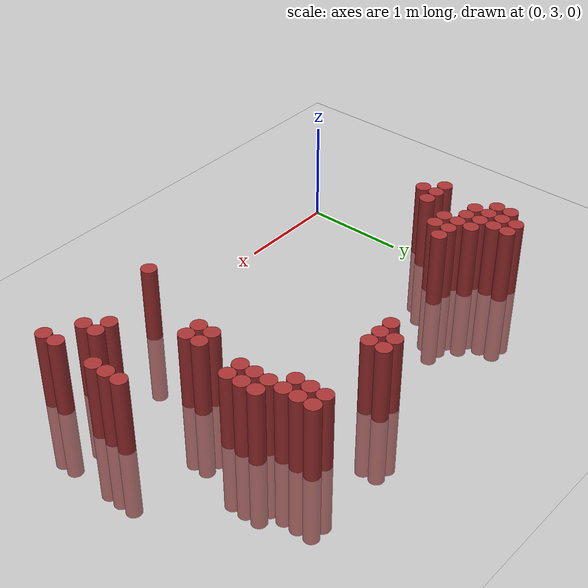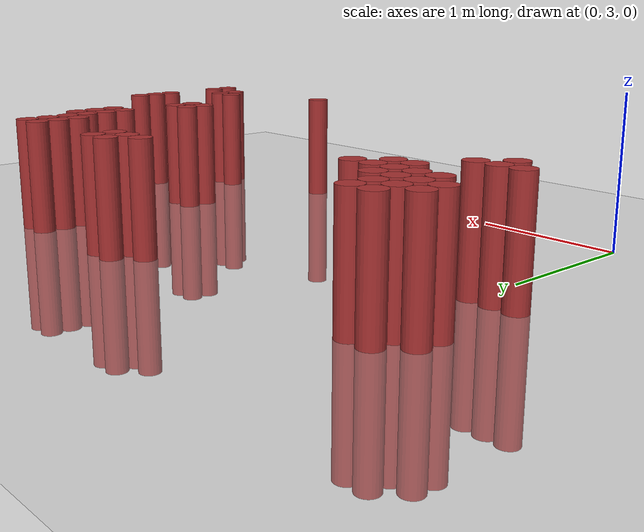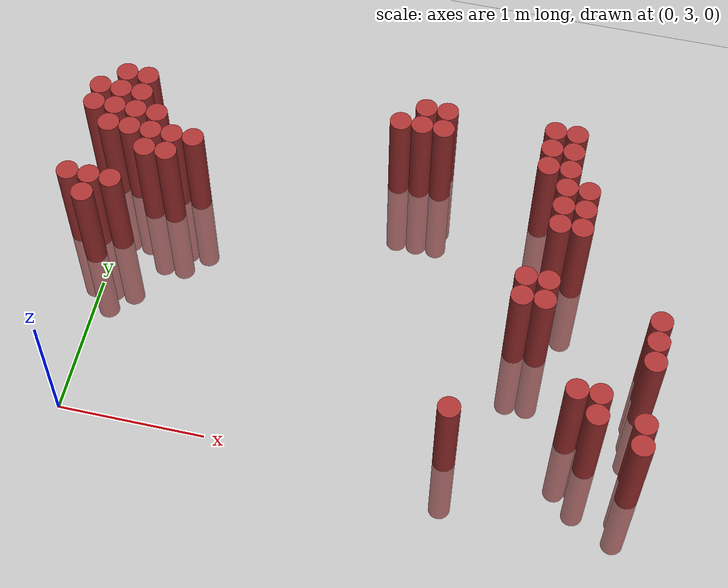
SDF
<sdf version="1.6">
 <world name="default">
  <model name="ground_plane">
   <static>1</static>
   <link name="link">
    <collision name="collision">
     <geometry><plane><normal>0 0 1</normal><size>100 100</size></plane></geometry>
     <surface><friction><ode><mu>100</mu><mu2>50</mu2></ode></friction></surface>
    </collision>
    <visual name="visual">
     <cast_shadows>0</cast_shadows>
     <geometry><plane><normal>0 0 1</normal><size>100 100</size></plane></geometry>
     <material>
      <script><uri>file://media/materials/scripts/gazebo.material</uri><name>Gazebo/Grey</name></script>
     </material>
    </visual>
   </link>
  </model>
  <model name="unit_cylinder_397">
   <static>1</static>
   <pose>-0.275000 4.375000 0.000000 0.000000 0.000000 0.000000</pose>
   <link name="link">
    <inertial>
     <mass>1</mass>
     <inertia><ixx>0.145833</ixx><ixy>0</ixy><ixz>0</ixz><iyy>0.145833</iyy><iyz>0</iyz><izz>0.125</izz></inertia>
    </inertial>
    <collision name="collision">
     <geometry><cylinder><radius>0.075000</radius><length>1.5</length></cylinder></geometry>
    </collision>
    <visual name="visual">
     <geometry><cylinder><radius>0.075000</radius><length>1.5</length></cylinder></geometry>
     <material>
      <ambient>0.648000 0.192000 0.192000 1</ambient>
      <diffuse>0.648000 0.192000 0.192000 1</diffuse>
     </material>
     <material>
      <script><name>Gazebo/Grey</name><uri>file://media/materials/scripts/gazebo.material</uri></script>
     </material>
    </visual>
   </link>
  </model>
  <model name="unit_cylinder_398">
   <static>1</static>
   <pose>-0.275000 4.975000 0.000000 0.000000 0.000000 0.000000</pose>
   <link name="link">
    <inertial>
     <mass>1</mass>
     <inertia><ixx>0.145833</ixx><ixy>0</ixy><ixz>0</ixz><iyy>0.145833</iyy><iyz>0</iyz><izz>0.125</izz></inertia>
    </inertial>
    <collision name="collision">
     <geometry><cylinder><radius>0.075000</radius><length>1.5</length></cylinder></geometry>
    </collision>
    <visual name="visual">
     <geometry><cylinder><radius>0.075000</radius><length>1.5</length></cylinder></geometry>
     <material>
      <ambient>0.648000 0.192000 0.192000 1</ambient>
      <diffuse>0.648000 0.192000 0.192000 1</diffuse>
     </material>
     <material>
      <script><name>Gazebo/Grey</name><uri>file://media/materials/scripts/gazebo.material</uri></script>
     </material>
    </visual>
   </link>
  </model>
  <model name="unit_cylinder_399">
   <static>1</static>
   <pose>-0.275000 5.125000 0.000000 0.000000 0.000000 0.000000</pose>
   <link name="link">
    <inertial>
     <mass>1</mass>
     <inertia><ixx>0.145833</ixx><ixy>0</ixy><ixz>0</ixz><iyy>0.145833</iyy><iyz>0</iyz><izz>0.125</izz></inertia>
    </inertial>
    <collision name="collision">
     <geometry><cylinder><radius>0.075000</radius><length>1.5</length></cylinder></geometry>
    </collision>
    <visual name="visual">
     <geometry><cylinder><radius>0.075000</radius><length>1.5</length></cylinder></geometry>
     <material>
      <ambient>0.648000 0.192000 0.192000 1</ambient>
      <diffuse>0.648000 0.192000 0.192000 1</diffuse>
     </material>
     <material>
      <script><name>Gazebo/Grey</name><uri>file://media/materials/scripts/gazebo.material</uri></script>
     </material>
    </visual>
   </link>
  </model>
  <model name="unit_cylinder_401">
   <static>1</static>
   <pose>-0.125000 4.225000 0.000000 0.000000 0.000000 0.000000</pose>
   <link name="link">
    <inertial>
     <mass>1</mass>
     <inertia><ixx>0.145833</ixx><ixy>0</ixy><ixz>0</ixz><iyy>0.145833</iyy><iyz>0</iyz><izz>0.125</izz></inertia>
    </inertial>
    <collision name="collision">
     <geometry><cylinder><radius>0.075000</radius><length>1.5</length></cylinder></geometry>
    </collision>
    <visual name="visual">
     <geometry><cylinder><radius>0.075000</radius><length>1.5</length></cylinder></geometry>
     <material>
      <ambient>0.648000 0.192000 0.192000 1</ambient>
      <diffuse>0.648000 0.192000 0.192000 1</diffuse>
     </material>
     <material>
      <script><name>Gazebo/Grey</name><uri>file://media/materials/scripts/gazebo.material</uri></script>
     </material>
    </visual>
   </link>
  </model>
  <model name="unit_cylinder_402">
   <static>1</static>
   <pose>-0.125000 4.375000 0.000000 0.000000 0.000000 0.000000</pose>
   <link name="link">
    <inertial>
     <mass>1</mass>
     <inertia><ixx>0.145833</ixx><ixy>0</ixy><ixz>0</ixz><iyy>0.145833</iyy><iyz>0</iyz><izz>0.125</izz></inertia>
    </inertial>
    <collision name="collision">
     <geometry><cylinder><radius>0.075000</radius><length>1.5</length></cylinder></geometry>
    </collision>
    <visual name="visual">
     <geometry><cylinder><radius>0.075000</radius><length>1.5</length></cylinder></geometry>
     <material>
      <ambient>0.648000 0.192000 0.192000 1</ambient>
      <diffuse>0.648000 0.192000 0.192000 1</diffuse>
     </material>
     <material>
      <script><name>Gazebo/Grey</name><uri>file://media/materials/scripts/gazebo.material</uri></script>
     </material>
    </visual>
   </link>
  </model>
  <model name="unit_cylinder_403">
   <static>1</static>
   <pose>-0.125000 4.825000 0.000000 0.000000 0.000000 0.000000</pose>
   <link name="link">
    <inertial>
     <mass>1</mass>
     <inertia><ixx>0.145833</ixx><ixy>0</ixy><ixz>0</ixz><iyy>0.145833</iyy><iyz>0</iyz><izz>0.125</izz></inertia>
    </inertial>
    <collision name="collision">
     <geometry><cylinder><radius>0.075000</radius><length>1.5</length></cylinder></geometry>
    </collision>
    <visual name="visual">
     <geometry><cylinder><radius>0.075000</radius><length>1.5</length></cylinder></geometry>
     <material>
      <ambient>0.648000 0.192000 0.192000 1</ambient>
      <diffuse>0.648000 0.192000 0.192000 1</diffuse>
     </material>
     <material>
      <script><name>Gazebo/Grey</name><uri>file://media/materials/scripts/gazebo.material</uri></script>
     </material>
    </visual>
   </link>
  </model>
  <model name="unit_cylinder_404">
   <static>1</static>
   <pose>-0.125000 4.975000 0.000000 0.000000 0.000000 0.000000</pose>
   <link name="link">
    <inertial>
     <mass>1</mass>
     <inertia><ixx>0.145833</ixx><ixy>0</ixy><ixz>0</ixz><iyy>0.145833</iyy><iyz>0</iyz><izz>0.125</izz></inertia>
    </inertial>
    <collision name="collision">
     <geometry><cylinder><radius>0.075000</radius><length>1.5</length></cylinder></geometry>
    </collision>
    <visual name="visual">
     <geometry><cylinder><radius>0.075000</radius><length>1.5</length></cylinder></geometry>
     <material>
      <ambient>0.648000 0.192000 0.192000 1</ambient>
      <diffuse>0.648000 0.192000 0.192000 1</diffuse>
     </material>
     <material>
      <script><name>Gazebo/Grey</name><uri>file://media/materials/scripts/gazebo.material</uri></script>
     </material>
    </visual>
   </link>
  </model>
  <model name="unit_cylinder_405">
   <static>1</static>
   <pose>-0.125000 5.125000 0.000000 0.000000 0.000000 0.000000</pose>
   <link name="link">
    <inertial>
     <mass>1</mass>
     <inertia><ixx>0.145833</ixx><ixy>0</ixy><ixz>0</ixz><iyy>0.145833</iyy><iyz>0</iyz><izz>0.125</izz></inertia>
    </inertial>
    <collision name="collision">
     <geometry><cylinder><radius>0.075000</radius><length>1.5</length></cylinder></geometry>
    </collision>
    <visual name="visual">
     <geometry><cylinder><radius>0.075000</radius><length>1.5</length></cylinder></geometry>
     <material>
      <ambient>0.648000 0.192000 0.192000 1</ambient>
      <diffuse>0.648000 0.192000 0.192000 1</diffuse>
     </material>
     <material>
      <script><name>Gazebo/Grey</name><uri>file://media/materials/scripts/gazebo.material</uri></script>
     </material>
    </visual>
   </link>
  </model>
  <model name="unit_cylinder_406">
   <static>1</static>
   <pose>-0.125000 5.275000 0.000000 0.000000 0.000000 0.000000</pose>
   <link name="link">
    <inertial>
     <mass>1</mass>
     <inertia><ixx>0.145833</ixx><ixy>0</ixy><ixz>0</ixz><iyy>0.145833</iyy><iyz>0</iyz><izz>0.125</izz></inertia>
    </inertial>
    <collision name="collision">
     <geometry><cylinder><radius>0.075000</radius><length>1.5</length></cylinder></geometry>
    </collision>
    <visual name="visual">
     <geometry><cylinder><radius>0.075000</radius><length>1.5</length></cylinder></geometry>
     <material>
      <ambient>0.648000 0.192000 0.192000 1</ambient>
      <diffuse>0.648000 0.192000 0.192000 1</diffuse>
     </material>
     <material>
      <script><name>Gazebo/Grey</name><uri>file://media/materials/scripts/gazebo.material</uri></script>
     </material>
    </visual>
   </link>
  </model>
  <model name="unit_cylinder_408">
   <static>1</static>
   <pose>0.025000 4.375000 0.000000 0.000000 0.000000 0.000000</pose>
   <link name="link">
    <inertial>
     <mass>1</mass>
     <inertia><ixx>0.145833</ixx><ixy>0</ixy><ixz>0</ixz><iyy>0.145833</iyy><iyz>0</iyz><izz>0.125</izz></inertia>
    </inertial>
    <collision name="collision">
     <geometry><cylinder><radius>0.075000</radius><length>1.5</length></cylinder></geometry>
    </collision>
    <visual name="visual">
     <geometry><cylinder><radius>0.075000</radius><length>1.5</length></cylinder></geometry>
     <material>
      <ambient>0.648000 0.192000 0.192000 1</ambient>
      <diffuse>0.648000 0.192000 0.192000 1</diffuse>
     </material>
     <material>
      <script><name>Gazebo/Grey</name><uri>file://media/materials/scripts/gazebo.material</uri></script>
     </material>
    </visual>
   </link>
  </model>
  <model name="unit_cylinder_409">
   <static>1</static>
   <pose>0.025000 4.825000 0.000000 0.000000 0.000000 0.000000</pose>
   <link name="link">
    <inertial>
     <mass>1</mass>
     <inertia><ixx>0.145833</ixx><ixy>0</ixy><ixz>0</ixz><iyy>0.145833</iyy><iyz>0</iyz><izz>0.125</izz></inertia>
    </inertial>
    <collision name="collision">
     <geometry><cylinder><radius>0.075000</radius><length>1.5</length></cylinder></geometry>
    </collision>
    <visual name="visual">
     <geometry><cylinder><radius>0.075000</radius><length>1.5</length></cylinder></geometry>
     <material>
      <ambient>0.648000 0.192000 0.192000 1</ambient>
      <diffuse>0.648000 0.192000 0.192000 1</diffuse>
     </material>
     <material>
      <script><name>Gazebo/Grey</name><uri>file://media/materials/scripts/gazebo.material</uri></script>
     </material>
    </visual>
   </link>
  </model>
  <model name="unit_cylinder_410">
   <static>1</static>
   <pose>0.025000 4.975000 0.000000 0.000000 0.000000 0.000000</pose>
   <link name="link">
    <inertial>
     <mass>1</mass>
     <inertia><ixx>0.145833</ixx><ixy>0</ixy><ixz>0</ixz><iyy>0.145833</iyy><iyz>0</iyz><izz>0.125</izz></inertia>
    </inertial>
    <collision name="collision">
     <geometry><cylinder><radius>0.075000</radius><length>1.5</length></cylinder></geometry>
    </collision>
    <visual name="visual">
     <geometry><cylinder><radius>0.075000</radius><length>1.5</length></cylinder></geometry>
     <material>
      <ambient>0.648000 0.192000 0.192000 1</ambient>
      <diffuse>0.648000 0.192000 0.192000 1</diffuse>
     </material>
     <material>
      <script><name>Gazebo/Grey</name><uri>file://media/materials/scripts/gazebo.material</uri></script>
     </material>
    </visual>
   </link>
  </model>
  <model name="unit_cylinder_411">
   <static>1</static>
   <pose>0.025000 5.125000 0.000000 0.000000 0.000000 0.000000</pose>
   <link name="link">
    <inertial>
     <mass>1</mass>
     <inertia><ixx>0.145833</ixx><ixy>0</ixy><ixz>0</ixz><iyy>0.145833</iyy><iyz>0</iyz><izz>0.125</izz></inertia>
    </inertial>
    <collision name="collision">
     <geometry><cylinder><radius>0.075000</radius><length>1.5</length></cylinder></geometry>
    </collision>
    <visual name="visual">
     <geometry><cylinder><radius>0.075000</radius><length>1.5</length></cylinder></geometry>
     <material>
      <ambient>0.648000 0.192000 0.192000 1</ambient>
      <diffuse>0.648000 0.192000 0.192000 1</diffuse>
     </material>
     <material>
      <script><name>Gazebo/Grey</name><uri>file://media/materials/scripts/gazebo.material</uri></script>
     </material>
    </visual>
   </link>
  </model>
  <model name="unit_cylinder_412">
   <static>1</static>
   <pose>0.025000 5.275000 0.000000 0.000000 0.000000 0.000000</pose>
   <link name="link">
    <inertial>
     <mass>1</mass>
     <inertia><ixx>0.145833</ixx><ixy>0</ixy><ixz>0</ixz><iyy>0.145833</iyy><iyz>0</iyz><izz>0.125</izz></inertia>
    </inertial>
    <collision name="collision">
     <geometry><cylinder><radius>0.075000</radius><length>1.5</length></cylinder></geometry>
    </collision>
    <visual name="visual">
     <geometry><cylinder><radius>0.075000</radius><length>1.5</length></cylinder></geometry>
     <material>
      <ambient>0.648000 0.192000 0.192000 1</ambient>
      <diffuse>0.648000 0.192000 0.192000 1</diffuse>
     </material>
     <material>
      <script><name>Gazebo/Grey</name><uri>file://media/materials/scripts/gazebo.material</uri></script>
     </material>
    </visual>
   </link>
  </model>
  <model name="unit_cylinder_415">
   <static>1</static>
   <pose>0.175000 4.675000 0.000000 0.000000 0.000000 0.000000</pose>
   <link name="link">
    <inertial>
     <mass>1</mass>
     <inertia><ixx>0.145833</ixx><ixy>0</ixy><ixz>0</ixz><iyy>0.145833</iyy><iyz>0</iyz><izz>0.125</izz></inertia>
    </inertial>
    <collision name="collision">
     <geometry><cylinder><radius>0.075000</radius><length>1.5</length></cylinder></geometry>
    </collision>
    <visual name="visual">
     <geometry><cylinder><radius>0.075000</radius><length>1.5</length></cylinder></geometry>
     <material>
      <ambient>0.648000 0.192000 0.192000 1</ambient>
      <diffuse>0.648000 0.192000 0.192000 1</diffuse>
     </material>
     <material>
      <script><name>Gazebo/Grey</name><uri>file://media/materials/scripts/gazebo.material</uri></script>
     </material>
    </visual>
   </link>
  </model>
  <model name="unit_cylinder_416">
   <static>1</static>
   <pose>0.175000 4.825000 0.000000 0.000000 0.000000 0.000000</pose>
   <link name="link">
    <inertial>
     <mass>1</mass>
     <inertia><ixx>0.145833</ixx><ixy>0</ixy><ixz>0</ixz><iyy>0.145833</iyy><iyz>0</iyz><izz>0.125</izz></inertia>
    </inertial>
    <collision name="collision">
     <geometry><cylinder><radius>0.075000</radius><length>1.5</length></cylinder></geometry>
    </collision>
    <visual name="visual">
     <geometry><cylinder><radius>0.075000</radius><length>1.5</length></cylinder></geometry>
     <material>
      <ambient>0.648000 0.192000 0.192000 1</ambient>
      <diffuse>0.648000 0.192000 0.192000 1</diffuse>
     </material>
     <material>
      <script><name>Gazebo/Grey</name><uri>file://media/materials/scripts/gazebo.material</uri></script>
     </material>
    </visual>
   </link>
  </model>
  <model name="unit_cylinder_417">
   <static>1</static>
   <pose>0.175000 4.975000 0.000000 0.000000 0.000000 0.000000</pose>
   <link name="link">
    <inertial>
     <mass>1</mass>
     <inertia><ixx>0.145833</ixx><ixy>0</ixy><ixz>0</ixz><iyy>0.145833</iyy><iyz>0</iyz><izz>0.125</izz></inertia>
    </inertial>
    <collision name="collision">
     <geometry><cylinder><radius>0.075000</radius><length>1.5</length></cylinder></geometry>
    </collision>
    <visual name="visual">
     <geometry><cylinder><radius>0.075000</radius><length>1.5</length></cylinder></geometry>
     <material>
      <ambient>0.648000 0.192000 0.192000 1</ambient>
      <diffuse>0.648000 0.192000 0.192000 1</diffuse>
     </material>
     <material>
      <script><name>Gazebo/Grey</name><uri>file://media/materials/scripts/gazebo.material</uri></script>
     </material>
    </visual>
   </link>
  </model>
  <model name="unit_cylinder_418">
   <static>1</static>
   <pose>0.325000 4.675000 0.000000 0.000000 0.000000 0.000000</pose>
   <link name="link">
    <inertial>
     <mass>1</mass>
     <inertia><ixx>0.145833</ixx><ixy>0</ixy><ixz>0</ixz><iyy>0.145833</iyy><iyz>0</iyz><izz>0.125</izz></inertia>
    </inertial>
    <collision name="collision">
     <geometry><cylinder><radius>0.075000</radius><length>1.5</length></cylinder></geometry>
    </collision>
    <visual name="visual">
     <geometry><cylinder><radius>0.075000</radius><length>1.5</length></cylinder></geometry>
     <material>
      <ambient>0.648000 0.192000 0.192000 1</ambient>
      <diffuse>0.648000 0.192000 0.192000 1</diffuse>
     </material>
     <material>
      <script><name>Gazebo/Grey</name><uri>file://media/materials/scripts/gazebo.material</uri></script>
     </material>
    </visual>
   </link>
  </model>
  <model name="unit_cylinder_419">
   <static>1</static>
   <pose>0.325000 4.825000 0.000000 0.000000 0.000000 0.000000</pose>
   <link name="link">
    <inertial>
     <mass>1</mass>
     <inertia><ixx>0.145833</ixx><ixy>0</ixy><ixz>0</ixz><iyy>0.145833</iyy><iyz>0</iyz><izz>0.125</izz></inertia>
    </inertial>
    <collision name="collision">
     <geometry><cylinder><radius>0.075000</radius><length>1.5</length></cylinder></geometry>
    </collision>
    <visual name="visual">
     <geometry><cylinder><radius>0.075000</radius><length>1.5</length></cylinder></geometry>
     <material>
      <ambient>0.648000 0.192000 0.192000 1</ambient>
      <diffuse>0.648000 0.192000 0.192000 1</diffuse>
     </material>
     <material>
      <script><name>Gazebo/Grey</name><uri>file://media/materials/scripts/gazebo.material</uri></script>
     </material>
    </visual>
   </link>
  </model>
  <model name="unit_cylinder_421">
   <static>1</static>
   <pose>0.475000 4.825000 0.000000 0.000000 0.000000 0.000000</pose>
   <link name="link">
    <inertial>
     <mass>1</mass>
     <inertia><ixx>0.145833</ixx><ixy>0</ixy><ixz>0</ixz><iyy>0.145833</iyy><iyz>0</iyz><izz>0.125</izz></inertia>
    </inertial>
    <collision name="collision">
     <geometry><cylinder><radius>0.075000</radius><length>1.5</length></cylinder></geometry>
    </collision>
    <visual name="visual">
     <geometry><cylinder><radius>0.075000</radius><length>1.5</length></cylinder></geometry>
     <material>
      <ambient>0.648000 0.192000 0.192000 1</ambient>
      <diffuse>0.648000 0.192000 0.192000 1</diffuse>
     </material>
     <material>
      <script><name>Gazebo/Grey</name><uri>file://media/materials/scripts/gazebo.material</uri></script>
     </material>
    </visual>
   </link>
  </model>
  <model name="unit_cylinder_432">
   <static>1</static>
   <pose>1.825000 5.275000 0.000000 0.000000 0.000000 0.000000</pose>
   <link name="link">
    <inertial>
     <mass>1</mass>
     <inertia><ixx>0.145833</ixx><ixy>0</ixy><ixz>0</ixz><iyy>0.145833</iyy><iyz>0</iyz><izz>0.125</izz></inertia>
    </inertial>
    <collision name="collision">
     <geometry><cylinder><radius>0.075000</radius><length>1.5</length></cylinder></geometry>
    </collision>
    <visual name="visual">
     <geometry><cylinder><radius>0.075000</radius><length>1.5</length></cylinder></geometry>
     <material>
      <ambient>0.648000 0.192000 0.192000 1</ambient>
      <diffuse>0.648000 0.192000 0.192000 1</diffuse>
     </material>
     <material>
      <script><name>Gazebo/Grey</name><uri>file://media/materials/scripts/gazebo.material</uri></script>
     </material>
    </visual>
   </link>
  </model>
  <model name="unit_cylinder_441">
   <static>1</static>
   <pose>1.975000 5.275000 0.000000 0.000000 0.000000 0.000000</pose>
   <link name="link">
    <inertial>
     <mass>1</mass>
     <inertia><ixx>0.145833</ixx><ixy>0</ixy><ixz>0</ixz><iyy>0.145833</iyy><iyz>0</iyz><izz>0.125</izz></inertia>
    </inertial>
    <collision name="collision">
     <geometry><cylinder><radius>0.075000</radius><length>1.5</length></cylinder></geometry>
    </collision>
    <visual name="visual">
     <geometry><cylinder><radius>0.075000</radius><length>1.5</length></cylinder></geometry>
     <material>
      <ambient>0.648000 0.192000 0.192000 1</ambient>
      <diffuse>0.648000 0.192000 0.192000 1</diffuse>
     </material>
     <material>
      <script><name>Gazebo/Grey</name><uri>file://media/materials/scripts/gazebo.material</uri></script>
     </material>
    </visual>
   </link>
  </model>
  <model name="unit_cylinder_442">
   <static>1</static>
   <pose>1.975000 5.425000 0.000000 0.000000 0.000000 0.000000</pose>
   <link name="link">
    <inertial>
     <mass>1</mass>
     <inertia><ixx>0.145833</ixx><ixy>0</ixy><ixz>0</ixz><iyy>0.145833</iyy><iyz>0</iyz><izz>0.125</izz></inertia>
    </inertial>
    <collision name="collision">
     <geometry><cylinder><radius>0.075000</radius><length>1.5</length></cylinder></geometry>
    </collision>
    <visual name="visual">
     <geometry><cylinder><radius>0.075000</radius><length>1.5</length></cylinder></geometry>
     <material>
      <ambient>0.648000 0.192000 0.192000 1</ambient>
      <diffuse>0.648000 0.192000 0.192000 1</diffuse>
     </material>
     <material>
      <script><name>Gazebo/Grey</name><uri>file://media/materials/scripts/gazebo.material</uri></script>
     </material>
    </visual>
   </link>
  </model>
  <model name="unit_cylinder_446">
   <static>1</static>
   <pose>2.125000 5.275000 0.000000 0.000000 0.000000 0.000000</pose>
   <link name="link">
    <inertial>
     <mass>1</mass>
     <inertia><ixx>0.145833</ixx><ixy>0</ixy><ixz>0</ixz><iyy>0.145833</iyy><iyz>0</iyz><izz>0.125</izz></inertia>
    </inertial>
    <collision name="collision">
     <geometry><cylinder><radius>0.075000</radius><length>1.5</length></cylinder></geometry>
    </collision>
    <visual name="visual">
     <geometry><cylinder><radius>0.075000</radius><length>1.5</length></cylinder></geometry>
     <material>
      <ambient>0.648000 0.192000 0.192000 1</ambient>
      <diffuse>0.648000 0.192000 0.192000 1</diffuse>
     </material>
     <material>
      <script><name>Gazebo/Grey</name><uri>file://media/materials/scripts/gazebo.material</uri></script>
     </material>
    </visual>
   </link>
  </model>
  <model name="unit_cylinder_447">
   <static>1</static>
   <pose>2.125000 5.425000 0.000000 0.000000 0.000000 0.000000</pose>
   <link name="link">
    <inertial>
     <mass>1</mass>
     <inertia><ixx>0.145833</ixx><ixy>0</ixy><ixz>0</ixz><iyy>0.145833</iyy><iyz>0</iyz><izz>0.125</izz></inertia>
    </inertial>
    <collision name="collision">
     <geometry><cylinder><radius>0.075000</radius><length>1.5</length></cylinder></geometry>
    </collision>
    <visual name="visual">
     <geometry><cylinder><radius>0.075000</radius><length>1.5</length></cylinder></geometry>
     <material>
      <ambient>0.648000 0.192000 0.192000 1</ambient>
      <diffuse>0.648000 0.192000 0.192000 1</diffuse>
     </material>
     <material>
      <script><name>Gazebo/Grey</name><uri>file://media/materials/scripts/gazebo.material</uri></script>
     </material>
    </visual>
   </link>
  </model>
  <model name="unit_cylinder_454">
   <static>1</static>
   <pose>2.575000 3.175000 0.000000 0.000000 0.000000 0.000000</pose>
   <link name="link">
    <inertial>
     <mass>1</mass>
     <inertia><ixx>0.145833</ixx><ixy>0</ixy><ixz>0</ixz><iyy>0.145833</iyy><iyz>0</iyz><izz>0.125</izz></inertia>
    </inertial>
    <collision name="collision">
     <geometry><cylinder><radius>0.075000</radius><length>1.5</length></cylinder></geometry>
    </collision>
    <visual name="visual">
     <geometry><cylinder><radius>0.075000</radius><length>1.5</length></cylinder></geometry>
     <material>
      <ambient>0.648000 0.192000 0.192000 1</ambient>
      <diffuse>0.648000 0.192000 0.192000 1</diffuse>
     </material>
     <material>
      <script><name>Gazebo/Grey</name><uri>file://media/materials/scripts/gazebo.material</uri></script>
     </material>
    </visual>
   </link>
  </model>
  <model name="unit_cylinder_461">
   <static>1</static>
   <pose>2.875000 4.075000 0.000000 0.000000 0.000000 0.000000</pose>
   <link name="link">
    <inertial>
     <mass>1</mass>
     <inertia><ixx>0.145833</ixx><ixy>0</ixy><ixz>0</ixz><iyy>0.145833</iyy><iyz>0</iyz><izz>0.125</izz></inertia>
    </inertial>
    <collision name="collision">
     <geometry><cylinder><radius>0.075000</radius><length>1.5</length></cylinder></geometry>
    </collision>
    <visual name="visual">
     <geometry><cylinder><radius>0.075000</radius><length>1.5</length></cylinder></geometry>
     <material>
      <ambient>0.648000 0.192000 0.192000 1</ambient>
      <diffuse>0.648000 0.192000 0.192000 1</diffuse>
     </material>
     <material>
      <script><name>Gazebo/Grey</name><uri>file://media/materials/scripts/gazebo.material</uri></script>
     </material>
    </visual>
   </link>
  </model>
  <model name="unit_cylinder_462">
   <static>1</static>
   <pose>2.875000 4.225000 0.000000 0.000000 0.000000 0.000000</pose>
   <link name="link">
    <inertial>
     <mass>1</mass>
     <inertia><ixx>0.145833</ixx><ixy>0</ixy><ixz>0</ixz><iyy>0.145833</iyy><iyz>0</iyz><izz>0.125</izz></inertia>
    </inertial>
    <collision name="collision">
     <geometry><cylinder><radius>0.075000</radius><length>1.5</length></cylinder></geometry>
    </collision>
    <visual name="visual">
     <geometry><cylinder><radius>0.075000</radius><length>1.5</length></cylinder></geometry>
     <material>
      <ambient>0.648000 0.192000 0.192000 1</ambient>
      <diffuse>0.648000 0.192000 0.192000 1</diffuse>
     </material>
     <material>
      <script><name>Gazebo/Grey</name><uri>file://media/materials/scripts/gazebo.material</uri></script>
     </material>
    </visual>
   </link>
  </model>
  <model name="unit_cylinder_463">
   <static>1</static>
   <pose>2.875000 5.125000 0.000000 0.000000 0.000000 0.000000</pose>
   <link name="link">
    <inertial>
     <mass>1</mass>
     <inertia><ixx>0.145833</ixx><ixy>0</ixy><ixz>0</ixz><iyy>0.145833</iyy><iyz>0</iyz><izz>0.125</izz></inertia>
    </inertial>
    <collision name="collision">
     <geometry><cylinder><radius>0.075000</radius><length>1.5</length></cylinder></geometry>
    </collision>
    <visual name="visual">
     <geometry><cylinder><radius>0.075000</radius><length>1.5</length></cylinder></geometry>
     <material>
      <ambient>0.648000 0.192000 0.192000 1</ambient>
      <diffuse>0.648000 0.192000 0.192000 1</diffuse>
     </material>
     <material>
      <script><name>Gazebo/Grey</name><uri>file://media/materials/scripts/gazebo.material</uri></script>
     </material>
    </visual>
   </link>
  </model>
  <model name="unit_cylinder_464">
   <static>1</static>
   <pose>2.875000 5.275000 0.000000 0.000000 0.000000 0.000000</pose>
   <link name="link">
    <inertial>
     <mass>1</mass>
     <inertia><ixx>0.145833</ixx><ixy>0</ixy><ixz>0</ixz><iyy>0.145833</iyy><iyz>0</iyz><izz>0.125</izz></inertia>
    </inertial>
    <collision name="collision">
     <geometry><cylinder><radius>0.075000</radius><length>1.5</length></cylinder></geometry>
    </collision>
    <visual name="visual">
     <geometry><cylinder><radius>0.075000</radius><length>1.5</length></cylinder></geometry>
     <material>
      <ambient>0.648000 0.192000 0.192000 1</ambient>
      <diffuse>0.648000 0.192000 0.192000 1</diffuse>
     </material>
     <material>
      <script><name>Gazebo/Grey</name><uri>file://media/materials/scripts/gazebo.material</uri></script>
     </material>
    </visual>
   </link>
  </model>
  <model name="unit_cylinder_465">
   <static>1</static>
   <pose>2.875000 5.425000 0.000000 0.000000 0.000000 0.000000</pose>
   <link name="link">
    <inertial>
     <mass>1</mass>
     <inertia><ixx>0.145833</ixx><ixy>0</ixy><ixz>0</ixz><iyy>0.145833</iyy><iyz>0</iyz><izz>0.125</izz></inertia>
    </inertial>
    <collision name="collision">
     <geometry><cylinder><radius>0.075000</radius><length>1.5</length></cylinder></geometry>
    </collision>
    <visual name="visual">
     <geometry><cylinder><radius>0.075000</radius><length>1.5</length></cylinder></geometry>
     <material>
      <ambient>0.648000 0.192000 0.192000 1</ambient>
      <diffuse>0.648000 0.192000 0.192000 1</diffuse>
     </material>
     <material>
      <script><name>Gazebo/Grey</name><uri>file://media/materials/scripts/gazebo.material</uri></script>
     </material>
    </visual>
   </link>
  </model>
  <model name="unit_cylinder_467">
   <static>1</static>
   <pose>3.025000 4.075000 0.000000 0.000000 0.000000 0.000000</pose>
   <link name="link">
    <inertial>
     <mass>1</mass>
     <inertia><ixx>0.145833</ixx><ixy>0</ixy><ixz>0</ixz><iyy>0.145833</iyy><iyz>0</iyz><izz>0.125</izz></inertia>
    </inertial>
    <collision name="collision">
     <geometry><cylinder><radius>0.075000</radius><length>1.5</length></cylinder></geometry>
    </collision>
    <visual name="visual">
     <geometry><cylinder><radius>0.075000</radius><length>1.5</length></cylinder></geometry>
     <material>
      <ambient>0.648000 0.192000 0.192000 1</ambient>
      <diffuse>0.648000 0.192000 0.192000 1</diffuse>
     </material>
     <material>
      <script><name>Gazebo/Grey</name><uri>file://media/materials/scripts/gazebo.material</uri></script>
     </material>
    </visual>
   </link>
  </model>
  <model name="unit_cylinder_468">
   <static>1</static>
   <pose>3.025000 4.225000 0.000000 0.000000 0.000000 0.000000</pose>
   <link name="link">
    <inertial>
     <mass>1</mass>
     <inertia><ixx>0.145833</ixx><ixy>0</ixy><ixz>0</ixz><iyy>0.145833</iyy><iyz>0</iyz><izz>0.125</izz></inertia>
    </inertial>
    <collision name="collision">
     <geometry><cylinder><radius>0.075000</radius><length>1.5</length></cylinder></geometry>
    </collision>
    <visual name="visual">
     <geometry><cylinder><radius>0.075000</radius><length>1.5</length></cylinder></geometry>
     <material>
      <ambient>0.648000 0.192000 0.192000 1</ambient>
      <diffuse>0.648000 0.192000 0.192000 1</diffuse>
     </material>
     <material>
      <script><name>Gazebo/Grey</name><uri>file://media/materials/scripts/gazebo.material</uri></script>
     </material>
    </visual>
   </link>
  </model>
  <model name="unit_cylinder_469">
   <static>1</static>
   <pose>3.025000 4.675000 0.000000 0.000000 0.000000 0.000000</pose>
   <link name="link">
    <inertial>
     <mass>1</mass>
     <inertia><ixx>0.145833</ixx><ixy>0</ixy><ixz>0</ixz><iyy>0.145833</iyy><iyz>0</iyz><izz>0.125</izz></inertia>
    </inertial>
    <collision name="collision">
     <geometry><cylinder><radius>0.075000</radius><length>1.5</length></cylinder></geometry>
    </collision>
    <visual name="visual">
     <geometry><cylinder><radius>0.075000</radius><length>1.5</length></cylinder></geometry>
     <material>
      <ambient>0.648000 0.192000 0.192000 1</ambient>
      <diffuse>0.648000 0.192000 0.192000 1</diffuse>
     </material>
     <material>
      <script><name>Gazebo/Grey</name><uri>file://media/materials/scripts/gazebo.material</uri></script>
     </material>
    </visual>
   </link>
  </model>
  <model name="unit_cylinder_470">
   <static>1</static>
   <pose>3.025000 4.825000 0.000000 0.000000 0.000000 0.000000</pose>
   <link name="link">
    <inertial>
     <mass>1</mass>
     <inertia><ixx>0.145833</ixx><ixy>0</ixy><ixz>0</ixz><iyy>0.145833</iyy><iyz>0</iyz><izz>0.125</izz></inertia>
    </inertial>
    <collision name="collision">
     <geometry><cylinder><radius>0.075000</radius><length>1.5</length></cylinder></geometry>
    </collision>
    <visual name="visual">
     <geometry><cylinder><radius>0.075000</radius><length>1.5</length></cylinder></geometry>
     <material>
      <ambient>0.648000 0.192000 0.192000 1</ambient>
      <diffuse>0.648000 0.192000 0.192000 1</diffuse>
     </material>
     <material>
      <script><name>Gazebo/Grey</name><uri>file://media/materials/scripts/gazebo.material</uri></script>
     </material>
    </visual>
   </link>
  </model>
  <model name="unit_cylinder_471">
   <static>1</static>
   <pose>3.025000 4.975000 0.000000 0.000000 0.000000 0.000000</pose>
   <link name="link">
    <inertial>
     <mass>1</mass>
     <inertia><ixx>0.145833</ixx><ixy>0</ixy><ixz>0</ixz><iyy>0.145833</iyy><iyz>0</iyz><izz>0.125</izz></inertia>
    </inertial>
    <collision name="collision">
     <geometry><cylinder><radius>0.075000</radius><length>1.5</length></cylinder></geometry>
    </collision>
    <visual name="visual">
     <geometry><cylinder><radius>0.075000</radius><length>1.5</length></cylinder></geometry>
     <material>
      <ambient>0.648000 0.192000 0.192000 1</ambient>
      <diffuse>0.648000 0.192000 0.192000 1</diffuse>
     </material>
     <material>
      <script><name>Gazebo/Grey</name><uri>file://media/materials/scripts/gazebo.material</uri></script>
     </material>
    </visual>
   </link>
  </model>
  <model name="unit_cylinder_472">
   <static>1</static>
   <pose>3.025000 5.125000 0.000000 0.000000 0.000000 0.000000</pose>
   <link name="link">
    <inertial>
     <mass>1</mass>
     <inertia><ixx>0.145833</ixx><ixy>0</ixy><ixz>0</ixz><iyy>0.145833</iyy><iyz>0</iyz><izz>0.125</izz></inertia>
    </inertial>
    <collision name="collision">
     <geometry><cylinder><radius>0.075000</radius><length>1.5</length></cylinder></geometry>
    </collision>
    <visual name="visual">
     <geometry><cylinder><radius>0.075000</radius><length>1.5</length></cylinder></geometry>
     <material>
      <ambient>0.648000 0.192000 0.192000 1</ambient>
      <diffuse>0.648000 0.192000 0.192000 1</diffuse>
     </material>
     <material>
      <script><name>Gazebo/Grey</name><uri>file://media/materials/scripts/gazebo.material</uri></script>
     </material>
    </visual>
   </link>
  </model>
  <model name="unit_cylinder_473">
   <static>1</static>
   <pose>3.025000 5.275000 0.000000 0.000000 0.000000 0.000000</pose>
   <link name="link">
    <inertial>
     <mass>1</mass>
     <inertia><ixx>0.145833</ixx><ixy>0</ixy><ixz>0</ixz><iyy>0.145833</iyy><iyz>0</iyz><izz>0.125</izz></inertia>
    </inertial>
    <collision name="collision">
     <geometry><cylinder><radius>0.075000</radius><length>1.5</length></cylinder></geometry>
    </collision>
    <visual name="visual">
     <geometry><cylinder><radius>0.075000</radius><length>1.5</length></cylinder></geometry>
     <material>
      <ambient>0.648000 0.192000 0.192000 1</ambient>
      <diffuse>0.648000 0.192000 0.192000 1</diffuse>
     </material>
     <material>
      <script><name>Gazebo/Grey</name><uri>file://media/materials/scripts/gazebo.material</uri></script>
     </material>
    </visual>
   </link>
  </model>
  <model name="unit_cylinder_474">
   <static>1</static>
   <pose>3.025000 5.425000 0.000000 0.000000 0.000000 0.000000</pose>
   <link name="link">
    <inertial>
     <mass>1</mass>
     <inertia><ixx>0.145833</ixx><ixy>0</ixy><ixz>0</ixz><iyy>0.145833</iyy><iyz>0</iyz><izz>0.125</izz></inertia>
    </inertial>
    <collision name="collision">
     <geometry><cylinder><radius>0.075000</radius><length>1.5</length></cylinder></geometry>
    </collision>
    <visual name="visual">
     <geometry><cylinder><radius>0.075000</radius><length>1.5</length></cylinder></geometry>
     <material>
      <ambient>0.648000 0.192000 0.192000 1</ambient>
      <diffuse>0.648000 0.192000 0.192000 1</diffuse>
     </material>
     <material>
      <script><name>Gazebo/Grey</name><uri>file://media/materials/scripts/gazebo.material</uri></script>
     </material>
    </visual>
   </link>
  </model>
  <model name="unit_cylinder_478">
   <static>1</static>
   <pose>3.175000 4.675000 0.000000 0.000000 0.000000 0.000000</pose>
   <link name="link">
    <inertial>
     <mass>1</mass>
     <inertia><ixx>0.145833</ixx><ixy>0</ixy><ixz>0</ixz><iyy>0.145833</iyy><iyz>0</iyz><izz>0.125</izz></inertia>
    </inertial>
    <collision name="collision">
     <geometry><cylinder><radius>0.075000</radius><length>1.5</length></cylinder></geometry>
    </collision>
    <visual name="visual">
     <geometry><cylinder><radius>0.075000</radius><length>1.5</length></cylinder></geometry>
     <material>
      <ambient>0.648000 0.192000 0.192000 1</ambient>
      <diffuse>0.648000 0.192000 0.192000 1</diffuse>
     </material>
     <material>
      <script><name>Gazebo/Grey</name><uri>file://media/materials/scripts/gazebo.material</uri></script>
     </material>
    </visual>
   </link>
  </model>
  <model name="unit_cylinder_479">
   <static>1</static>
   <pose>3.175000 4.825000 0.000000 0.000000 0.000000 0.000000</pose>
   <link name="link">
    <inertial>
     <mass>1</mass>
     <inertia><ixx>0.145833</ixx><ixy>0</ixy><ixz>0</ixz><iyy>0.145833</iyy><iyz>0</iyz><izz>0.125</izz></inertia>
    </inertial>
    <collision name="collision">
     <geometry><cylinder><radius>0.075000</radius><length>1.5</length></cylinder></geometry>
    </collision>
    <visual name="visual">
     <geometry><cylinder><radius>0.075000</radius><length>1.5</length></cylinder></geometry>
     <material>
      <ambient>0.648000 0.192000 0.192000 1</ambient>
      <diffuse>0.648000 0.192000 0.192000 1</diffuse>
     </material>
     <material>
      <script><name>Gazebo/Grey</name><uri>file://media/materials/scripts/gazebo.material</uri></script>
     </material>
    </visual>
   </link>
  </model>
  <model name="unit_cylinder_480">
   <static>1</static>
   <pose>3.175000 4.975000 0.000000 0.000000 0.000000 0.000000</pose>
   <link name="link">
    <inertial>
     <mass>1</mass>
     <inertia><ixx>0.145833</ixx><ixy>0</ixy><ixz>0</ixz><iyy>0.145833</iyy><iyz>0</iyz><izz>0.125</izz></inertia>
    </inertial>
    <collision name="collision">
     <geometry><cylinder><radius>0.075000</radius><length>1.5</length></cylinder></geometry>
    </collision>
    <visual name="visual">
     <geometry><cylinder><radius>0.075000</radius><length>1.5</length></cylinder></geometry>
     <material>
      <ambient>0.648000 0.192000 0.192000 1</ambient>
      <diffuse>0.648000 0.192000 0.192000 1</diffuse>
     </material>
     <material>
      <script><name>Gazebo/Grey</name><uri>file://media/materials/scripts/gazebo.material</uri></script>
     </material>
    </visual>
   </link>
  </model>
  <model name="unit_cylinder_483">
   <static>1</static>
   <pose>3.325000 3.475000 0.000000 0.000000 0.000000 0.000000</pose>
   <link name="link">
    <inertial>
     <mass>1</mass>
     <inertia><ixx>0.145833</ixx><ixy>0</ixy><ixz>0</ixz><iyy>0.145833</iyy><iyz>0</iyz><izz>0.125</izz></inertia>
    </inertial>
    <collision name="collision">
     <geometry><cylinder><radius>0.075000</radius><length>1.5</length></cylinder></geometry>
    </collision>
    <visual name="visual">
     <geometry><cylinder><radius>0.075000</radius><length>1.5</length></cylinder></geometry>
     <material>
      <ambient>0.648000 0.192000 0.192000 1</ambient>
      <diffuse>0.648000 0.192000 0.192000 1</diffuse>
     </material>
     <material>
      <script><name>Gazebo/Grey</name><uri>file://media/materials/scripts/gazebo.material</uri></script>
     </material>
    </visual>
   </link>
  </model>
  <model name="unit_cylinder_484">
   <static>1</static>
   <pose>3.475000 3.325000 0.000000 0.000000 0.000000 0.000000</pose>
   <link name="link">
    <inertial>
     <mass>1</mass>
     <inertia><ixx>0.145833</ixx><ixy>0</ixy><ixz>0</ixz><iyy>0.145833</iyy><iyz>0</iyz><izz>0.125</izz></inertia>
    </inertial>
    <collision name="collision">
     <geometry><cylinder><radius>0.075000</radius><length>1.5</length></cylinder></geometry>
    </collision>
    <visual name="visual">
     <geometry><cylinder><radius>0.075000</radius><length>1.5</length></cylinder></geometry>
     <material>
      <ambient>0.648000 0.192000 0.192000 1</ambient>
      <diffuse>0.648000 0.192000 0.192000 1</diffuse>
     </material>
     <material>
      <script><name>Gazebo/Grey</name><uri>file://media/materials/scripts/gazebo.material</uri></script>
     </material>
    </visual>
   </link>
  </model>
  <model name="unit_cylinder_485">
   <static>1</static>
   <pose>3.475000 3.475000 0.000000 0.000000 0.000000 0.000000</pose>
   <link name="link">
    <inertial>
     <mass>1</mass>
     <inertia><ixx>0.145833</ixx><ixy>0</ixy><ixz>0</ixz><iyy>0.145833</iyy><iyz>0</iyz><izz>0.125</izz></inertia>
    </inertial>
    <collision name="collision">
     <geometry><cylinder><radius>0.075000</radius><length>1.5</length></cylinder></geometry>
    </collision>
    <visual name="visual">
     <geometry><cylinder><radius>0.075000</radius><length>1.5</length></cylinder></geometry>
     <material>
      <ambient>0.648000 0.192000 0.192000 1</ambient>
      <diffuse>0.648000 0.192000 0.192000 1</diffuse>
     </material>
     <material>
      <script><name>Gazebo/Grey</name><uri>file://media/materials/scripts/gazebo.material</uri></script>
     </material>
    </visual>
   </link>
  </model>
  <model name="unit_cylinder_494">
   <static>1</static>
   <pose>3.775000 3.175000 0.000000 0.000000 0.000000 0.000000</pose>
   <link name="link">
    <inertial>
     <mass>1</mass>
     <inertia><ixx>0.145833</ixx><ixy>0</ixy><ixz>0</ixz><iyy>0.145833</iyy><iyz>0</iyz><izz>0.125</izz></inertia>
    </inertial>
    <collision name="collision">
     <geometry><cylinder><radius>0.075000</radius><length>1.5</length></cylinder></geometry>
    </collision>
    <visual name="visual">
     <geometry><cylinder><radius>0.075000</radius><length>1.5</length></cylinder></geometry>
     <material>
      <ambient>0.648000 0.192000 0.192000 1</ambient>
      <diffuse>0.648000 0.192000 0.192000 1</diffuse>
     </material>
     <material>
      <script><name>Gazebo/Grey</name><uri>file://media/materials/scripts/gazebo.material</uri></script>
     </material>
    </visual>
   </link>
  </model>
  <model name="unit_cylinder_495">
   <static>1</static>
   <pose>3.775000 3.325000 0.000000 0.000000 0.000000 0.000000</pose>
   <link name="link">
    <inertial>
     <mass>1</mass>
     <inertia><ixx>0.145833</ixx><ixy>0</ixy><ixz>0</ixz><iyy>0.145833</iyy><iyz>0</iyz><izz>0.125</izz></inertia>
    </inertial>
    <collision name="collision">
     <geometry><cylinder><radius>0.075000</radius><length>1.5</length></cylinder></geometry>
    </collision>
    <visual name="visual">
     <geometry><cylinder><radius>0.075000</radius><length>1.5</length></cylinder></geometry>
     <material>
      <ambient>0.648000 0.192000 0.192000 1</ambient>
      <diffuse>0.648000 0.192000 0.192000 1</diffuse>
     </material>
     <material>
      <script><name>Gazebo/Grey</name><uri>file://media/materials/scripts/gazebo.material</uri></script>
     </material>
    </visual>
   </link>
  </model>
  <model name="unit_cylinder_496">
   <static>1</static>
   <pose>3.775000 3.775000 0.000000 0.000000 0.000000 0.000000</pose>
   <link name="link">
    <inertial>
     <mass>1</mass>
     <inertia><ixx>0.145833</ixx><ixy>0</ixy><ixz>0</ixz><iyy>0.145833</iyy><iyz>0</iyz><izz>0.125</izz></inertia>
    </inertial>
    <collision name="collision">
     <geometry><cylinder><radius>0.075000</radius><length>1.5</length></cylinder></geometry>
    </collision>
    <visual name="visual">
     <geometry><cylinder><radius>0.075000</radius><length>1.5</length></cylinder></geometry>
     <material>
      <ambient>0.648000 0.192000 0.192000 1</ambient>
      <diffuse>0.648000 0.192000 0.192000 1</diffuse>
     </material>
     <material>
      <script><name>Gazebo/Grey</name><uri>file://media/materials/scripts/gazebo.material</uri></script>
     </material>
    </visual>
   </link>
  </model>
  <model name="unit_cylinder_497">
   <static>1</static>
   <pose>3.775000 3.925000 0.000000 0.000000 0.000000 0.000000</pose>
   <link name="link">
    <inertial>
     <mass>1</mass>
     <inertia><ixx>0.145833</ixx><ixy>0</ixy><ixz>0</ixz><iyy>0.145833</iyy><iyz>0</iyz><izz>0.125</izz></inertia>
    </inertial>
    <collision name="collision">
     <geometry><cylinder><radius>0.075000</radius><length>1.5</length></cylinder></geometry>
    </collision>
    <visual name="visual">
     <geometry><cylinder><radius>0.075000</radius><length>1.5</length></cylinder></geometry>
     <material>
      <ambient>0.648000 0.192000 0.192000 1</ambient>
      <diffuse>0.648000 0.192000 0.192000 1</diffuse>
     </material>
     <material>
      <script><name>Gazebo/Grey</name><uri>file://media/materials/scripts/gazebo.material</uri></script>
     </material>
    </visual>
   </link>
  </model>
  <model name="unit_cylinder_498">
   <static>1</static>
   <pose>3.775000 4.075000 0.000000 0.000000 0.000000 0.000000</pose>
   <link name="link">
    <inertial>
     <mass>1</mass>
     <inertia><ixx>0.145833</ixx><ixy>0</ixy><ixz>0</ixz><iyy>0.145833</iyy><iyz>0</iyz><izz>0.125</izz></inertia>
    </inertial>
    <collision name="collision">
     <geometry><cylinder><radius>0.075000</radius><length>1.5</length></cylinder></geometry>
    </collision>
    <visual name="visual">
     <geometry><cylinder><radius>0.075000</radius><length>1.5</length></cylinder></geometry>
     <material>
      <ambient>0.648000 0.192000 0.192000 1</ambient>
      <diffuse>0.648000 0.192000 0.192000 1</diffuse>
     </material>
     <material>
      <script><name>Gazebo/Grey</name><uri>file://media/materials/scripts/gazebo.material</uri></script>
     </material>
    </visual>
   </link>
  </model>
 </world>
</sdf>
